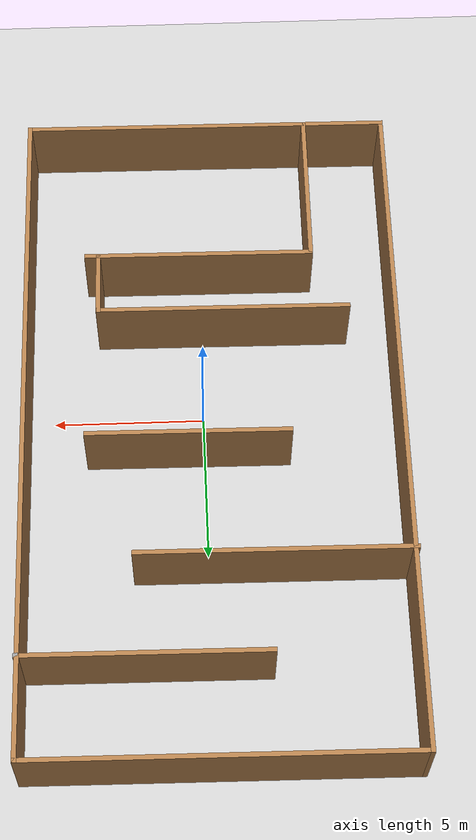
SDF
<sdf version="1.7">
 <world name="default">
  <light name="sun" type="directional">
   <pose>0 0 10 0 -0 0</pose>
   <diffuse>0.8 0.8 0.8 1</diffuse>
   <specular>0.2 0.2 0.2 1</specular>
   <attenuation>
    <range>1000</range>
    <constant>0.9</constant>
    <linear>0.01</linear>
    <quadratic>0.001</quadratic>
   </attenuation>
   <direction>-0.5 0.1 -0.9</direction>
   <spot><inner_angle>0</inner_angle><outer_angle>0</outer_angle><falloff>0</falloff></spot>
  </light>
  <model name="ground_plane">
   <static>1</static>
   <link name="link">
    <collision name="collision">
     <geometry><plane><normal>0 0 1</normal><size>100 100</size></plane></geometry>
     <surface>
      <contact><collide_bitmask>65535</collide_bitmask></contact>
      <friction><ode><mu>100</mu><mu2>50</mu2></ode></friction>
     </surface>
    </collision>
    <visual name="visual">
     <cast_shadows>0</cast_shadows>
     <geometry><plane><normal>0 0 1</normal><size>100 100</size></plane></geometry>
     <material>
      <script><uri>file://media/materials/scripts/gazebo.material</uri><name>Gazebo/Grey</name></script>
     </material>
    </visual>
   </link>
  </model>
  <gravity>0 0 -9.8</gravity>
  <magnetic_field>6e-06 2.3e-05 -4.2e-05</magnetic_field>
  <atmosphere type="adiabatic"/>
  <physics type="ode">
   <max_step_size>0.001</max_step_size>
   <real_time_factor>1</real_time_factor>
   <real_time_update_rate>1000</real_time_update_rate>
  </physics>
  <scene><ambient>0.4 0.4 0.4 1</ambient><background>0.7 0.7 0.7 1</background><shadows>1</shadows></scene>
  <spherical_coordinates>
   <surface_model>EARTH_WGS84</surface_model>
   <latitude_deg>0</latitude_deg>
   <longitude_deg>0</longitude_deg>
   <elevation>0</elevation>
   <heading_deg>0</heading_deg>
  </spherical_coordinates>
  <model name="maze">
   <pose>-0.326477 0.974808 0 0 -0 1.56127</pose>
   <link name="Wall_0">
    <collision name="Wall_0_Collision">
     <geometry><box><size>12.5 0.15 2.5</size></box></geometry>
     <pose>0 0 1.25 0 -0 0</pose>
    </collision>
    <visual name="Wall_0_Visual">
     <pose>0 0 1.25 0 -0 0</pose>
     <geometry><box><size>12.5 0.15 2.5</size></box></geometry>
     <material>
      <script><uri>file://media/materials/scripts/gazebo.material</uri><name>Gazebo/Wood</name></script>
      <ambient>1 1 1 1</ambient>
     </material>
     <meta><layer>0</layer></meta>
    </visual>
    <pose>-11.425 -0.018498 0 0 -0 -1.5708</pose>
   </link>
   <link name="Wall_1">
    <collision name="Wall_1_Collision">
     <geometry><box><size>23 0.15 2.5</size></box></geometry>
     <pose>0 0 1.25 0 -0 0</pose>
    </collision>
    <visual name="Wall_1_Visual">
     <pose>0 0 1.25 0 -0 0</pose>
     <geometry><box><size>23 0.15 2.5</size></box></geometry>
     <material>
      <script><uri>file://media/materials/scripts/gazebo.material</uri><name>Gazebo/Wood</name></script>
      <ambient>1 1 1 1</ambient>
     </material>
     <meta><layer>0</layer></meta>
    </visual>
    <pose>0 -6.1935 0 0 -0 0</pose>
   </link>
   <link name="Wall_11">
    <collision name="Wall_11_Collision">
     <geometry><box><size>6.75 0.15 2.5</size></box></geometry>
     <pose>0 0 1.25 0 -0 0</pose>
    </collision>
    <visual name="Wall_11_Visual">
     <pose>0 0 1.25 0 -0 0</pose>
     <geometry><box><size>6.75 0.15 2.5</size></box></geometry>
     <material>
      <script><uri>file://media/materials/scripts/gazebo.material</uri><name>Gazebo/Wood</name></script>
      <ambient>1 1 1 1</ambient>
     </material>
     <meta><layer>0</layer></meta>
    </visual>
    <pose>0.678123 -0.851392 0 0 -0 -1.5708</pose>
   </link>
   <link name="Wall_13">
    <collision name="Wall_13_Collision">
     <geometry><box><size>9 0.15 2.5</size></box></geometry>
     <pose>0 0 1.25 0 -0 0</pose>
    </collision>
    <visual name="Wall_13_Visual">
     <pose>0 0 1.25 0 -0 0</pose>
     <geometry><box><size>9 0.15 2.5</size></box></geometry>
     <material>
      <script><uri>file://media/materials/scripts/gazebo.material</uri><name>Gazebo/Wood</name></script>
      <ambient>1 1 1 1</ambient>
     </material>
     <meta><layer>0</layer></meta>
    </visual>
    <pose>4.87574 1.80146 0 0 -0 -1.5708</pose>
   </link>
   <link name="Wall_15">
    <collision name="Wall_15_Collision">
     <geometry><box><size>0.16 0.15 2.5</size></box></geometry>
     <pose>0 0 1.25 0 -0 0</pose>
    </collision>
    <visual name="Wall_15_Visual">
     <pose>0 0 1.25 0 -0 0</pose>
     <geometry><box><size>0.16 0.15 2.5</size></box></geometry>
     <material>
      <script><uri>file://media/materials/scripts/gazebo.material</uri><name>Gazebo/Grey</name></script>
      <ambient>1 1 1 1</ambient>
     </material>
     <meta><layer>0</layer></meta>
    </visual>
    <pose>8.16887 -6.22646 0 0 -0 0</pose>
   </link>
   <link name="Wall_16">
    <collision name="Wall_16_Collision">
     <geometry><box><size>8 0.15 2.5</size></box></geometry>
     <pose>0 0 1.25 0 -0 0</pose>
    </collision>
    <visual name="Wall_16_Visual">
     <pose>0 0 1.25 0 -0 0</pose>
     <geometry><box><size>8 0.15 2.5</size></box></geometry>
     <material>
      <script><uri>file://media/materials/scripts/gazebo.material</uri><name>Gazebo/Wood</name></script>
      <ambient>1 1 1 1</ambient>
     </material>
     <meta><layer>0</layer></meta>
    </visual>
    <pose>8.17387 -2.30146 0 0 -0 1.5708</pose>
   </link>
   <link name="Wall_2">
    <collision name="Wall_2_Collision">
     <geometry><box><size>12.5 0.15 2.5</size></box></geometry>
     <pose>0 0 1.25 0 -0 0</pose>
    </collision>
    <visual name="Wall_2_Visual">
     <pose>0 0 1.25 0 -0 0</pose>
     <geometry><box><size>12.5 0.15 2.5</size></box></geometry>
     <material>
      <script><uri>file://media/materials/scripts/gazebo.material</uri><name>Gazebo/Wood</name></script>
      <ambient>1 1 1 1</ambient>
     </material>
     <meta><layer>0</layer></meta>
    </visual>
    <pose>11.425 -0.018498 0 0 -0 1.5708</pose>
   </link>
   <link name="Wall_3">
    <collision name="Wall_3_Collision">
     <geometry><box><size>23 0.15 2.5</size></box></geometry>
     <pose>0 0 1.25 0 -0 0</pose>
    </collision>
    <visual name="Wall_3_Visual">
     <pose>0 0 1.25 0 -0 0</pose>
     <geometry><box><size>23 0.15 2.5</size></box></geometry>
     <material>
      <script><uri>file://media/materials/scripts/gazebo.material</uri><name>Gazebo/Wood</name></script>
      <ambient>1 1 1 1</ambient>
     </material>
     <meta><layer>0</layer></meta>
    </visual>
    <pose>0 6.1565 0 0 -0 3.14159</pose>
   </link>
   <link name="Wall_5">
    <collision name="Wall_5_Collision">
     <geometry><box><size>5.5 0.15 2.5</size></box></geometry>
     <pose>0 0 1.25 0 -0 0</pose>
    </collision>
    <visual name="Wall_5_Visual">
     <pose>0 0 1.25 0 -0 0</pose>
     <geometry><box><size>5.5 0.15 2.5</size></box></geometry>
     <material>
      <script><uri>file://media/materials/scripts/gazebo.material</uri><name>Gazebo/Wood</name></script>
      <ambient>1 1 1 1</ambient>
     </material>
     <meta><layer>0</layer></meta>
    </visual>
    <pose>-8.75 3.42805 0 0 -0 0</pose>
   </link>
   <link name="Wall_6">
    <collision name="Wall_6_Collision">
     <geometry><box><size>7.75 0.15 2.5</size></box></geometry>
     <pose>0 0 1.25 0 -0 0</pose>
    </collision>
    <visual name="Wall_6_Visual">
     <pose>0 0 1.25 0 -0 0</pose>
     <geometry><box><size>7.75 0.15 2.5</size></box></geometry>
     <material>
      <script><uri>file://media/materials/scripts/gazebo.material</uri><name>Gazebo/Wood</name></script>
      <ambient>1 1 1 1</ambient>
     </material>
     <meta><layer>0</layer></meta>
    </visual>
    <pose>-6.075 -0.371948 0 0 -0 -1.5708</pose>
   </link>
   <link name="Wall_8">
    <collision name="Wall_8_Collision">
     <geometry><box><size>2.25 0.15 2.5</size></box></geometry>
     <pose>0 0 1.25 0 -0 0</pose>
    </collision>
    <visual name="Wall_8_Visual">
     <pose>0 0 1.25 0 -0 0</pose>
     <geometry><box><size>2.25 0.15 2.5</size></box></geometry>
     <material>
      <script><uri>file://media/materials/scripts/gazebo.material</uri><name>Gazebo/Wood</name></script>
      <ambient>1 1 1 1</ambient>
     </material>
     <meta><layer>0</layer></meta>
    </visual>
    <pose>-4.98806 -3.77785 0 0 -0 0</pose>
   </link>
   <link name="Wall_9">
    <collision name="Wall_9_Collision">
     <geometry><box><size>8.5 0.15 2.5</size></box></geometry>
     <pose>0 0 1.25 0 -0 0</pose>
    </collision>
    <visual name="Wall_9_Visual">
     <pose>0 0 1.25 0 -0 0</pose>
     <geometry><box><size>8.5 0.15 2.5</size></box></geometry>
     <material>
      <script><uri>file://media/materials/scripts/gazebo.material</uri><name>Gazebo/Wood</name></script>
      <ambient>1 1 1 1</ambient>
     </material>
     <meta><layer>0</layer></meta>
    </visual>
    <pose>-3.93806 0.397146 0 0 -0 1.5708</pose>
   </link>
   <static>1</static>
  </model>
 </world>
</sdf>
